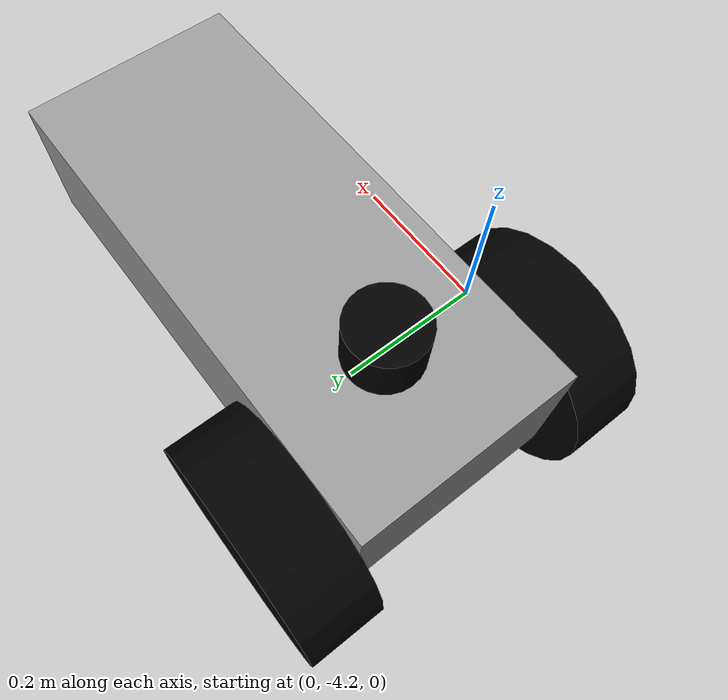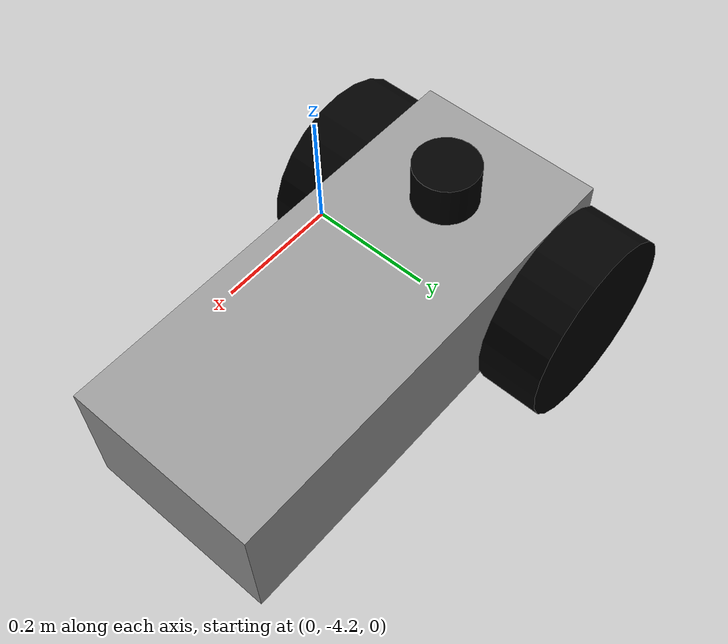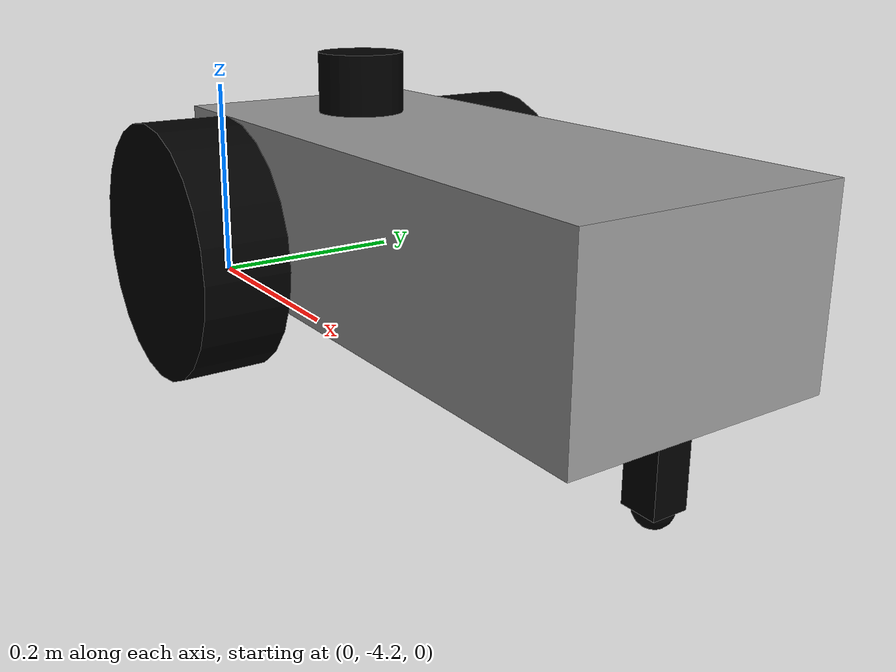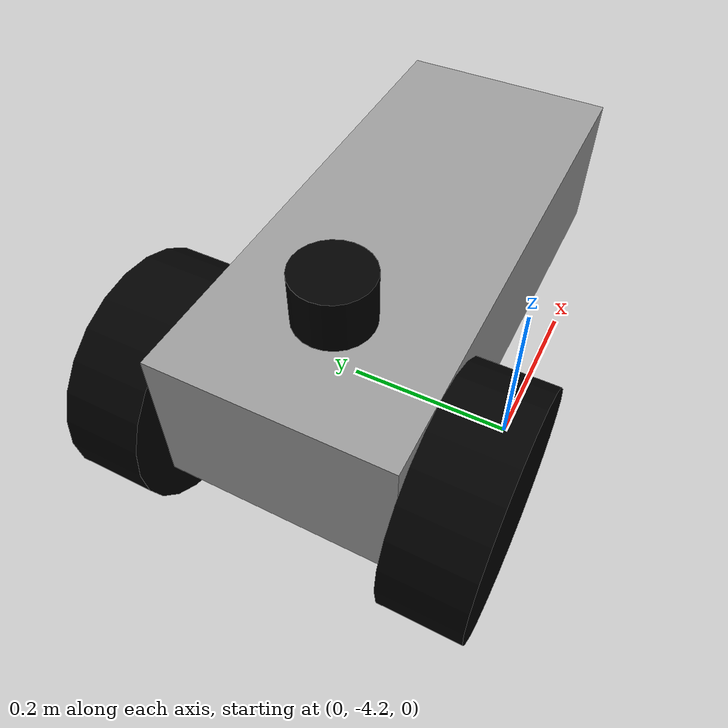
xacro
<?xml version="1.0"?>
<robot xmlns:xacro="http://www.ros.org/wiki/xacro">

    <xacro:include filename="inertial_macros.xacro"/>

    <material name="white">
        <color rgba="1 1 1 1"/>
    </material>

    <material name="orange">
        <color rgba="1 0.3 0.1 1"/>
    </material>

    <material name="blue">
        <color rgba="0.2 0.2 1 1"/>
    </material>

    <material name="black">
        <color rgba="0 0 0 1"/>
    </material>

    <material name="red">
        <color rgba="1 0 0 1"/>
    </material>

    <!-- BASE LINK -->
    <link name="base_link">

    </link>

    <!-- CHASSIS LINK-->
    <joint name="chassis_joint" type="fixed">
        <parent link="base_link"/>
        <child link="chassis"/>
        <origin xyz="-0.15 -4 -0.05"/>
    </joint>

    <link name="chassis">
        <visual>
            <origin xyz="0.3 0 0.1"/>
            <geometry>
                <box size="0.7 0.3 0.2"/>
            </geometry>
            <material name="gray"/>
        </visual>

        <collision>
            <origin xyz="0.3 0 0.1"/>
            <geometry>
                <box size="0.7 0.3 0.2"/>
            </geometry>
        </collision>
        <xacro:inertial_box mass="10" x="0.6" y="0.4" z="0.2">
            <origin xyz="0.3 0 0.1" rpy="0 0 0"/>
        </xacro:inertial_box>
    </link>

    <gazebo reference="chassis">
        <material>Gazebo/Blue</material>
    </gazebo>

    <!--LEFT WHEEL LINK-->
    <joint name="left_wheel_joint" type="continuous">
        <parent link="base_link"/>
        <child link="left_wheel"/>
        <!-- y=+(ancho/2+grosor_rueda/2)  -->
        <origin xyz="-0.1 -3.8 0" rpy="-${pi/2} 0 0"/>
        <axis xyz="0 0 1"/>
    </joint>

    <link name="left_wheel">
        <visual>
            <geometry>
                <cylinder radius="0.15" length="0.1"/>
            </geometry>
            <material name="black"/>
        </visual>

        <collision>
            <geometry>
                <cylinder radius="0.15" length="0.1"/>
            </geometry>
        </collision>
        <xacro:inertial_cylinder mass="0.2" length="0.05" radius="0.1">
            <origin xyz="0 0 0" rpy="0 0 0"/>
        </xacro:inertial_cylinder>
    </link>

    <gazebo reference="left_wheel">
        <material>Gazebo/Black</material>
    </gazebo>

    <!--RIGHT WHEEL LINK-->
    <joint name="right_wheel_joint" type="continuous">
        <parent link="base_link"/>
        <child link="right_wheel"/>
        <!-- y=-(ancho/2+grosor_rueda/2)  -->
        <origin xyz="-0.1 -4.2 0" rpy="${pi/2} 0 0"/>
        <axis xyz="0 0 -1"/>
    </joint>

    <link name="right_wheel">
        <visual>
            <geometry>
                <cylinder radius="0.15" length="0.1"/>
            </geometry>
            <material name="black"/>
        </visual>

        <collision>
            <geometry>
                <cylinder radius="0.15" length="0.1"/>
            </geometry>
        </collision>
        <xacro:inertial_cylinder mass="0.2" length="0.05" radius="0.1">
            <origin xyz="0 0 0" rpy="0 0 0"/>
        </xacro:inertial_cylinder>
    </link>

    <gazebo reference="right_wheel">
        <material>Gazebo/Black</material>
    </gazebo>

    <!-- CASTER BASE LINK-->

    <joint name="caster_base_joint" type="fixed">
        <parent link="chassis"/>
        <child link="caster_base"/>
        <origin xyz="0.6 0 0"/>
    </joint>

    <link name="caster_base">
        <visual>
            <origin xyz="0 0 -0.015"/>
            <geometry>

                <box size="0.04 0.04 0.15"/>
            </geometry>
            <material name="black"/>
        </visual>

        <collision>
            <origin xyz="0 0 -0.015"/>
            <geometry>

                <box size="0.04 0.04 0.15"/>
            </geometry>
        </collision>

        <xacro:inertial_box mass="0.02" x="0.02" y="0.02" z="0.03">
            <origin xyz="0.35 0 0.07"/>
        </xacro:inertial_box>

    </link>

    <gazebo reference="caster_wheel">
        <material>Gazebo/Black</material>
    </gazebo>

    <!-- CASTER WHEEL LINK-->

    <joint name="caster_wheel_joint" type="fixed">
        <parent link="caster_base"/>
        <child link="caster_wheel"/>
        <origin xyz="0 0 -0.09"/>
    </joint>

    <link name="caster_wheel">
        <visual>
            <geometry>
                <sphere radius="0.02"/>
            </geometry>
            <material name="black"/>
        </visual>

        <collision>
            <geometry>
                <sphere radius="0.02"/>
            </geometry>
        </collision>

        <xacro:inertial_sphere mass="0.01" radius="0.02">
            <origin xyz="0 0 0" rpy="0 0 0"/>
        </xacro:inertial_sphere>
    </link>

    <gazebo reference="caster_wheel">
        <material>Gazebo/Black</material>
        <mu1 value="0.001"/>
        <mu2 value="0.001"/>
    </gazebo>

    <!-- LIDAR SUPPORT LINK-->

    <joint name="lidar_support_joint" type="fixed">
        <parent link="chassis"/>
        <child link="lidar_support"/>
        <origin xyz="0.1 0 0.2"/>
    </joint>

    <link name="lidar_support">
        <visual>
            <origin xyz="0 0 0.035"/>
            <geometry>
                <cylinder radius="0.05" length="0.07"/>
            </geometry>
            <material name="black"/>2
        </visual>
        <collision>
            <origin xyz="0.15 0 0.035"/>
            <geometry>
                <cylinder radius="0.05" length="0.07"/>
            </geometry>
        </collision>
        <xacro:inertial_cylinder mass="0.1" length="0.07" radius="0.05">
            <origin xyz="0 0 0" rpy="0 0 0"/>
        </xacro:inertial_cylinder>

    </link>

    <gazebo reference="lidar_support">
        <material>Gazebo/Black</material>
    </gazebo>

</robot>
